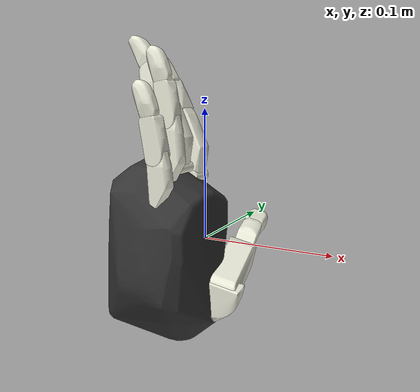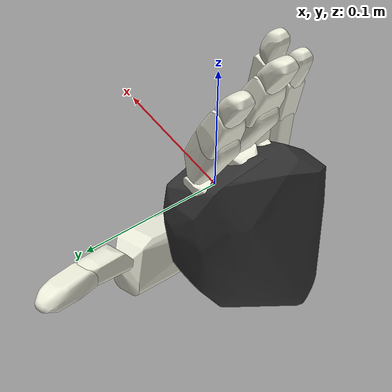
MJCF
<mujoco model="liberhand_right">
  <compiler angle="radian" autolimits="true"/>
  <option gravity="0 0 0" timestep="0.001"/>

  <asset>
    <texture type="skybox" builtin="gradient" rgb1="1 1 1" rgb2="1 1 1" width="32" height="512"/>
  </asset>

  <visual>
    <global offwidth="3840" offheight="2160"/>
  </visual>

  <asset>
    <mesh name="palm" file="./meshes/palm_convex.obj"/>
    <mesh name="f11" file="./meshes/f11_convex.obj"/>
    <mesh name="f12" file="./meshes/f12_convex.obj"/>
    <mesh name="f13" file="./meshes/f13_convex.obj"/>
    <mesh name="f14" file="./meshes/f14_convex.obj"/>
    <mesh name="f21" file="./meshes/f21_convex.obj"/>
    <mesh name="f22" file="./meshes/f22_convex.obj"/>
    <mesh name="f23" file="./meshes/f23_convex.obj"/>
    <mesh name="f24" file="./meshes/f24_convex.obj"/>
    <mesh name="f31" file="./meshes/f31_convex.obj"/>
    <mesh name="f32" file="./meshes/f32_convex.obj"/>
    <mesh name="f33" file="./meshes/f33_convex.obj"/>
    <mesh name="f34" file="./meshes/f34_convex.obj"/>
    <mesh name="f41" file="./meshes/f41_convex.obj"/>
    <mesh name="f42" file="./meshes/f42_convex.obj"/>
    <mesh name="f43" file="./meshes/f43_convex.obj"/>
    <mesh name="f44" file="./meshes/f44_convex.obj"/>
    <mesh name="f51" file="./meshes/f51_convex.obj"/>
    <mesh name="f52" file="./meshes/f52_convex.obj"/>
    <mesh name="f53" file="./meshes/f53_convex.obj"/>
    <mesh name="f54" file="./meshes/f54_convex.obj"/>
  </asset>

  <worldbody>
    <light pos="0 0 5" dir="0 0 -1" directional="true"/>

    <body name="hand_right_palm">
      <inertial pos="0 0 0" quat="0.994283 0.0215173 0.0263891 0.101206" mass="0.91778" diaginertia="0.0018754 0.0015702 0.000644013"/>
      <joint name="world_to_hand" type="free"/>
      <geom type="mesh" rgba="0.2 0.2 0.2 1" mesh="palm"/>
      <body name="hand_right_grasp" pos="0 0 -0.025" quat="0.0  0.38268343 0.0  0.92387953">
      </body>
      <body name="hand_right_f11" pos="-0.022466 0.027654 0.043657" quat="0.5065 0.493412 0.506504 0.493412">
        <inertial pos="0 0.00069742 -0.0093798" quat="0.706804 0.0206991 -0.0206991 0.706804" mass="0.0033015" diaginertia="3.10586e-07 2e-07 1.39414e-07"/>
        <joint name="hand_right_f11_joint" pos="0 0 0" axis="0 0 -1" range="-0.4 0.4" actuatorfrcrange="-30 30" damping="0.1" armature="0.0002" frictionloss="0.0"/>
        <geom type="mesh" rgba="0.913725 0.913725 0.847059 1" mesh="f11"/>
        <body name="hand_right_f12" quat="0.499998 0.5 0.500002 0.5">
          <inertial pos="0.026032 -0.0074611 2.268e-05" quat="-0.330388 0.713877 -0.0698403 0.613471" mass="0.058465" diaginertia="1.66096e-05 1.57486e-05 2.27188e-06"/>
          <joint name="hand_right_f12_joint" pos="0 0 0" axis="0 0 1" range="0 1.9" actuatorfrcrange="-30 30" damping="0.1" armature="0.0002" frictionloss="0.0"/>
          <geom type="mesh" rgba="0.913725 0.913725 0.847059 1" mesh="f12"/>
          <body name="hand_right_f13" pos="0.048883 -0.018383 0">
            <inertial pos="0.0090975 -0.0015069 0.0013415" quat="0.368759 0.472545 0.444032 0.665998" mass="0.014574" diaginertia="2.15877e-06 1.8024e-06 8.18837e-07"/>
            <joint name="hand_right_f13_joint" pos="0 0 0" axis="0 0 1" range="0 1.65" actuatorfrcrange="-30 30" damping="0.1" armature="0.0002" frictionloss="0.0"/>
            <geom type="mesh" rgba="0.913725 0.913725 0.847059 1" mesh="f13"/>
            <body name="hand_right_f14" pos="0.0284 -0.0092477 0">
              <inertial pos="0.007749 -0.0041898 -0.00072552" quat="-0.376065 0.718367 -0.0331381 0.584317" mass="0.0055228" diaginertia="5.13712e-07 4.74117e-07 1.4217e-07"/>
              <joint name="hand_right_f14_joint" pos="0 0 0" axis="0 0 1" range="0 1.65" actuatorfrcrange="-30 30" damping="0.0" armature="0.0" frictionloss="0.0"/>
              <geom type="mesh" rgba="0.913725 0.913725 0.847059 1" mesh="f14"/>
              <body name="hand_right_f14_end" pos="0.019695 -0.0034802 0" quat="0.952334 0 0 -0.305059"/>
              <body name="hand_right_f1_eef" pos="0.02397 -0.01237 0" quat="0.825336 0 0 -0.564642"/>
            </body>
          </body>
        </body>
      </body>
      <body name="hand_right_f21" pos="-0.022466 0.0022583 0.053546" quat="0.499998 0.5 0.500002 0.5">
        <inertial pos="0 0.00069742 -0.0093798" quat="0.706804 0.0206991 -0.0206991 0.706804" mass="0.0033015" diaginertia="3.10586e-07 2e-07 1.39414e-07"/>
        <joint name="hand_right_f21_joint" pos="0 0 0" axis="0 0 -1" range="-0.4 0.4" actuatorfrcrange="-30 30" damping="0.1" armature="0.0002" frictionloss="0.0"/>
        <geom type="mesh" rgba="0.913725 0.913725 0.847059 1" mesh="f21"/>
        <body name="hand_right_f22" quat="0.499998 0.5 0.500002 0.5">
          <inertial pos="0.026032 -0.0074611 2.268e-05" quat="-0.330388 0.713877 -0.0698403 0.613471" mass="0.058465" diaginertia="1.66096e-05 1.57486e-05 2.27188e-06"/>
          <joint name="hand_right_f22_joint" pos="0 0 0" axis="0 0 1" range="0 1.9" actuatorfrcrange="-30 30" damping="0.1" armature="0.0002" frictionloss="0.0"/>
          <geom type="mesh" rgba="0.913725 0.913725 0.847059 1" mesh="f22"/>
          <body name="hand_right_f23" pos="0.048883 -0.018383 0">
            <inertial pos="0.0090975 -0.0015069 0.0013415" quat="0.368759 0.472545 0.444032 0.665998" mass="0.014574" diaginertia="2.15877e-06 1.8024e-06 8.18837e-07"/>
            <joint name="hand_right_f23_joint" pos="0 0 0" axis="0 0 1" range="0 1.65" actuatorfrcrange="-30 30" damping="0.1" armature="0.0002" frictionloss="0.0"/>
            <geom type="mesh" rgba="0.913725 0.913725 0.847059 1" mesh="f23"/>
            <body name="hand_right_f24" pos="0.0284 -0.0092477 0">
              <inertial pos="0.007749 -0.0041898 -0.00072552" quat="-0.376065 0.718367 -0.0331381 0.584317" mass="0.0055228" diaginertia="5.13712e-07 4.74117e-07 1.4217e-07"/>
              <joint name="hand_right_f24_joint" pos="0 0 0" axis="0 0 1" range="0 1.65" actuatorfrcrange="-30 30" damping="0.0" armature="0.0" frictionloss="0.0"/>
              <geom type="mesh" rgba="0.913725 0.913725 0.847059 1" mesh="f24"/>
              <body name="hand_right_f24_end" pos="0.019695 -0.0034802 0" quat="0.952334 0 0 -0.305059"/>
              <body name="hand_right_f2_eef" pos="0.02397 -0.01237 0" quat="0.825336 0 0 -0.564642"/>
            </body>
          </body>
        </body>
      </body>
      <body name="hand_right_f31" pos="-0.021466 -0.017542 0.047798" quat="0.499998 0.5 0.500002 0.5">
        <inertial pos="-6.964e-05 -0.00044078 -0.012759" quat="0.706754 0.0223246 -0.0223246 0.706754" mass="0.0085521" diaginertia="7.6253e-07 7.6e-07 1.2747e-07"/>
        <joint name="hand_right_f31_joint" pos="0 0 0" axis="0 0 -1" range="-0.4 0.4" actuatorfrcrange="-30 30" damping="0.1" armature="0.0002" frictionloss="0.0"/>
        <geom type="mesh" rgba="0.913725 0.913725 0.847059 1" mesh="f31"/>
        <body name="hand_right_f32" quat="0.499998 0.5 0.500002 0.5">
          <inertial pos="0.025132 0.0031733 -8.727e-05" quat="-0.0229244 0.706735 0.0229244 0.706735" mass="0.01244" diaginertia="2.41e-06 2.29779e-06 4.42207e-07"/>
          <joint name="hand_right_f32_joint" pos="0 0 0" axis="0 0 1" range="0 1.65" actuatorfrcrange="-30 30" damping="0.1" armature="0.0002" frictionloss="0.0"/>
          <geom type="mesh" rgba="0.913725 0.913725 0.847059 1" mesh="f32"/>
          <body name="hand_right_f33" pos="0.044995 0.00066781 0">
            <inertial pos="0.010032 -0.00058707 -9.093e-05" quat="0.451397 0.451397 0.54428 0.54428" mass="0.0071009" diaginertia="7.05057e-07 7e-07 2.64943e-07"/>
            <joint name="hand_right_f33_joint" pos="0 0 0" axis="0 0 1" range="0 1.65" actuatorfrcrange="-30 30" damping="0.0" armature="0.0" frictionloss="0.0"/>
            <geom type="mesh" rgba="0.913725 0.913725 0.847059 1" mesh="f33"/>
            <body name="hand_right_f34" pos="0.024601 -0.0044465 0">
              <inertial pos="0.010482 -0.0030354 -1.03e-05" quat="-0.0992524 0.700106 0.0992524 0.700106" mass="0.0049513" diaginertia="3.7e-07 3.37361e-07 1.12639e-07"/>
              <joint name="hand_right_f34_joint" pos="0 0 0" axis="0 0 1" range="0 1.65" actuatorfrcrange="-30 30" damping="0.0" armature="0.0" frictionloss="0.0"/>
              <geom type="mesh" rgba="0.913725 0.913725 0.847059 1" mesh="f34"/>
              <body name="hand_right_f34_end" pos="0.021134 0.0011803 0" quat="0.980067 0 0 -0.198669"/>
              <body name="hand_right_f3_eef" pos="0.02707 -0.00731 0" quat="0.825336 0 0 -0.564642"/>
            </body>
          </body>
        </body>
      </body>
      <body name="hand_right_f41" pos="-0.021466 -0.034458 0.032384" quat="0.491196 0.50865 0.491199 0.50865">
        <inertial pos="-6.964e-05 -0.00044078 -0.012759" quat="0.706754 0.0223246 -0.0223246 0.706754" mass="0.0085521" diaginertia="7.6253e-07 7.6e-07 1.2747e-07"/>
        <joint name="hand_right_f41_joint" pos="0 0 0" axis="0 0 -1" range="-0.4 0.4" actuatorfrcrange="-30 30" damping="0.1" armature="0.0002" frictionloss="0.0"/>
        <geom type="mesh" rgba="0.913725 0.913725 0.847059 1" mesh="f41"/>
        <body name="hand_right_f42" quat="0.499998 0.5 0.500002 0.5">
          <inertial pos="0.021044 0.0035949 -7.944e-05" quat="-0.011899 0.707007 0.011899 0.707007" mass="0.0096409" diaginertia="1.35e-06 1.24101e-06 3.4899e-07"/>
          <joint name="hand_right_f42_joint" pos="0 0 0" axis="0 0 1" range="0 1.6" actuatorfrcrange="-30 30" damping="0.1" armature="0.0002" frictionloss="0.0"/>
          <geom type="mesh" rgba="0.913725 0.913725 0.847059 1" mesh="f42"/>
          <body name="hand_right_f43" pos="0.035975 0.001338 0">
            <inertial pos="0.010032 -0.00058707 -9.093e-05" quat="0.451397 0.451397 0.54428 0.54428" mass="0.0071009" diaginertia="7.05057e-07 7e-07 2.64943e-07"/>
            <joint name="hand_right_f43_joint" pos="0 0 0" axis="0 0 1" range="0 1.65" actuatorfrcrange="-30 30" damping="0.0" armature="0.0" frictionloss="0.0"/>
            <geom type="mesh" rgba="0.913725 0.913725 0.847059 1" mesh="f43"/>
            <body name="hand_right_f44" pos="0.024621 -0.004339 0">
              <inertial pos="0.010482 -0.0030354 -1.03e-05" quat="-0.0992524 0.700106 0.0992524 0.700106" mass="0.0049513" diaginertia="3.7e-07 3.37361e-07 1.12639e-07"/>
              <joint name="hand_right_f44_joint" pos="0 0 0" axis="0 0 1" range="0 1.65" actuatorfrcrange="-30 30" damping="0.0" armature="0.0" frictionloss="0.0"/>
              <geom type="mesh" rgba="0.913725 0.913725 0.847059 1" mesh="f44"/>
              <body name="hand_right_f44_end" pos="0.021123 0.0013734 0" quat="0.985585 0 0 -0.169182"/>
              <body name="hand_right_f4_eef" pos="0.02707 -0.00731 0" quat="0.825336 0 0 -0.564642"/>
            </body>
          </body>
        </body>
      </body>
      <body name="hand_right_f51" pos="-0.00049657 0.0084524 -0.066754">
        <inertial pos="0.0053991 0.0016936 0.01157" quat="0.382167 0.6714 0.53871 0.336098" mass="0.022542" diaginertia="5.25338e-06 3.56442e-06 2.8022e-06"/>
        <joint name="hand_right_f51_joint" pos="0 0 0" axis="0 0 -1" range="0 1.9" actuatorfrcrange="-30 30" damping="0.1" armature="0.0002" frictionloss="0.0"/>
        <geom type="mesh" rgba="0.913725 0.913725 0.847059 1" mesh="f51"/>
        <body name="hand_right_f52" pos="0.0092399 0.0031582 0.022073" quat="0.31611 0.573949 0.549177 0.518712">
          <inertial pos="0.03317 -0.0064258 -0.00083733" quat="0.0733623 0.670395 0.154724 0.721975" mass="0.12909" diaginertia="6.93324e-05 6.44145e-05 1.53331e-05"/>
          <joint name="hand_right_f52_joint" pos="0 0 0" axis="0 0 1" range="0 0.8" actuatorfrcrange="-30 30" damping="0.1" armature="0.0002" frictionloss="0.0"/>
          <geom type="mesh" rgba="0.913725 0.913725 0.847059 1" mesh="f52"/>
          <body name="hand_right_f53" pos="0.0654 0 0">
            <inertial pos="0.021453 0.0041043 -5.93e-06" quat="0.499752 0.496324 0.499565 0.504327" mass="0.011849" diaginertia="1.94008e-06 1.88008e-06 6.5984e-07"/>
            <joint name="hand_right_f53_joint" pos="0 0 0" axis="0 0 1" range="0 1.65" actuatorfrcrange="-30 30" damping="0.1" armature="0.0002" frictionloss="0.0"/>
            <geom type="mesh" rgba="0.913725 0.913725 0.847059 1" mesh="f53"/>
            <body name="hand_right_f54" pos="0.035837 0.0034221 0">
              <inertial pos="0.013824 -0.0017677 -5.567e-05" quat="0.453204 0.453204 0.542776 0.542776" mass="0.010348" diaginertia="1.3772e-06 1.17e-06 5.228e-07"/>
              <joint name="hand_right_f54_joint" pos="0 0 0" axis="0 0 1" range="0 1.65" actuatorfrcrange="-30 30" damping="0.0" armature="0.0" frictionloss="0.0"/>
              <geom type="mesh" rgba="0.913725 0.913725 0.847059 1" mesh="f54"/>
              <body name="hand_right_f54_end" pos="0.024 0.0044004 0" quat="0.998201 0 0 -0.059964"/>
              <body name="hand_right_f5_eef" pos="0.03483 -0.0034 0" quat="0.921061 0 0 -0.389418"/>
            </body>
          </body>
        </body>
      </body>
    </body>
  </worldbody>

  <contact>
      <exclude name="ex_r_palm_f11" body1="hand_right_palm" body2="hand_right_f11" />
      <exclude name="ex_r_palm_f21" body1="hand_right_palm" body2="hand_right_f21" />
      <exclude name="ex_r_palm_f31" body1="hand_right_palm" body2="hand_right_f31" />
      <exclude name="ex_r_palm_f41" body1="hand_right_palm" body2="hand_right_f41" />
      <exclude name="ex_r_palm_f51" body1="hand_right_palm" body2="hand_right_f51" />
      <exclude name="ex_r_palm_f12" body1="hand_right_palm" body2="hand_right_f12" />
      <exclude name="ex_r_palm_f22" body1="hand_right_palm" body2="hand_right_f22" />
      <exclude name="ex_r_palm_f32" body1="hand_right_palm" body2="hand_right_f32" />
      <exclude name="ex_r_palm_f42" body1="hand_right_palm" body2="hand_right_f42" />
      <exclude name="ex_r_palm_f52" body1="hand_right_palm" body2="hand_right_f52" />

      <exclude name="ex_r_f11_f12" body1="hand_right_f11" body2="hand_right_f12" />
      <exclude name="ex_r_f12_f13" body1="hand_right_f12" body2="hand_right_f13" />
      <exclude name="ex_r_f13_f14" body1="hand_right_f13" body2="hand_right_f14" />
      <exclude name="ex_r_f21_f22" body1="hand_right_f21" body2="hand_right_f22" />
      <exclude name="ex_r_f22_f23" body1="hand_right_f22" body2="hand_right_f23" />
      <exclude name="ex_r_f23_f24" body1="hand_right_f23" body2="hand_right_f24" />
      <exclude name="ex_r_f31_f32" body1="hand_right_f31" body2="hand_right_f32" />
      <exclude name="ex_r_f32_f33" body1="hand_right_f32" body2="hand_right_f33" />
      <exclude name="ex_r_f33_f34" body1="hand_right_f33" body2="hand_right_f34" />
      <exclude name="ex_r_f41_f42" body1="hand_right_f41" body2="hand_right_f42" />
      <exclude name="ex_r_f42_f43" body1="hand_right_f42" body2="hand_right_f43" />
      <exclude name="ex_r_f43_f44" body1="hand_right_f43" body2="hand_right_f44" />
      <exclude name="ex_r_f51_f52" body1="hand_right_f51" body2="hand_right_f52" />
      <exclude name="ex_r_f52_f53" body1="hand_right_f52" body2="hand_right_f53" />
      <exclude name="ex_r_f53_f54" body1="hand_right_f53" body2="hand_right_f54" />

  </contact>

  <equality>
      <joint joint1="hand_right_f14_joint" joint2="hand_right_f13_joint" polycoef=" 0.009423  2.051759 -1.313311  0.650234 -0.139774" solref="0.002 1" solimp="0.9 0.99 0.001"/>
      <joint joint1="hand_right_f24_joint" joint2="hand_right_f23_joint" polycoef=" 0.009423  2.051759 -1.313311  0.650234 -0.139774" solref="0.002 1" solimp="0.9 0.99 0.001"/>
      <joint joint1="hand_right_f33_joint" joint2="hand_right_f32_joint" polycoef=" 0.001338  1.412466 -0.421321  0.146794 -0.022447" solref="0.002 1" solimp="0.9 0.99 0.001"/>
      <joint joint1="hand_right_f34_joint" joint2="hand_right_f33_joint" polycoef="-0.000471  1.102908 -0.263366  0.025065 -0.007574" solref="0.002 1" solimp="0.9 0.99 0.001"/>
      <joint joint1="hand_right_f43_joint" joint2="hand_right_f42_joint" polycoef=" 0.001871  1.353670 -0.361404  0.068408  0.012166" solref="0.002 1" solimp="0.9 0.99 0.001"/>
      <joint joint1="hand_right_f44_joint" joint2="hand_right_f43_joint" polycoef="-0.000471  1.102908 -0.263366  0.025065 -0.007574" solref="0.002 1" solimp="0.9 0.99 0.001"/>
      <joint joint1="hand_right_f54_joint" joint2="hand_right_f53_joint" polycoef=" 0.001018  1.618791 -0.733579  0.366074 -0.086615" solref="0.002 1" solimp="0.9 0.99 0.001"/>
  </equality>

  <actuator>
      <position name="M_hand_right_f11_joint" joint="hand_right_f11_joint" kp="10" forcerange="-30 30" ctrlrange="-0.4 0.4"/>
      <position name="M_hand_right_f12_joint" joint="hand_right_f12_joint" kp="10" forcerange="-30 30" ctrlrange="0.0 1.9"/>
      <position name="M_hand_right_f13_joint" joint="hand_right_f13_joint" kp="10" forcerange="-30 30" ctrlrange="0.0 1.65"/>
      <position name="M_hand_right_f21_joint" joint="hand_right_f21_joint" kp="10" forcerange="-30 30" ctrlrange="-0.4 0.4"/>
      <position name="M_hand_right_f22_joint" joint="hand_right_f22_joint" kp="10" forcerange="-30 30" ctrlrange="0.0 1.9"/>
      <position name="M_hand_right_f23_joint" joint="hand_right_f23_joint" kp="10" forcerange="-30 30" ctrlrange="0.0 1.65"/>
      <position name="M_hand_right_f31_joint" joint="hand_right_f31_joint" kp="10" forcerange="-30 30" ctrlrange="-0.4 0.0"/>
      <position name="M_hand_right_f32_joint" joint="hand_right_f32_joint" kp="10" forcerange="-30 30" ctrlrange="0.0 1.65"/>
      <position name="M_hand_right_f41_joint" joint="hand_right_f41_joint" kp="10" forcerange="-30 30" ctrlrange="-0.4 0.0"/>
      <position name="M_hand_right_f42_joint" joint="hand_right_f42_joint" kp="10" forcerange="-30 30" ctrlrange="0.0 1.6"/>
      <position name="M_hand_right_f51_joint" joint="hand_right_f51_joint" kp="10" forcerange="-30 30" ctrlrange="0.0 1.9"/>
      <position name="M_hand_right_f52_joint" joint="hand_right_f52_joint" kp="10" forcerange="-30 30" ctrlrange="0.0 0.8"/>
      <position name="M_hand_right_f53_joint" joint="hand_right_f53_joint" kp="10" forcerange="-30 30" ctrlrange="0.0 1.65"/>

  </actuator>

</mujoco>
